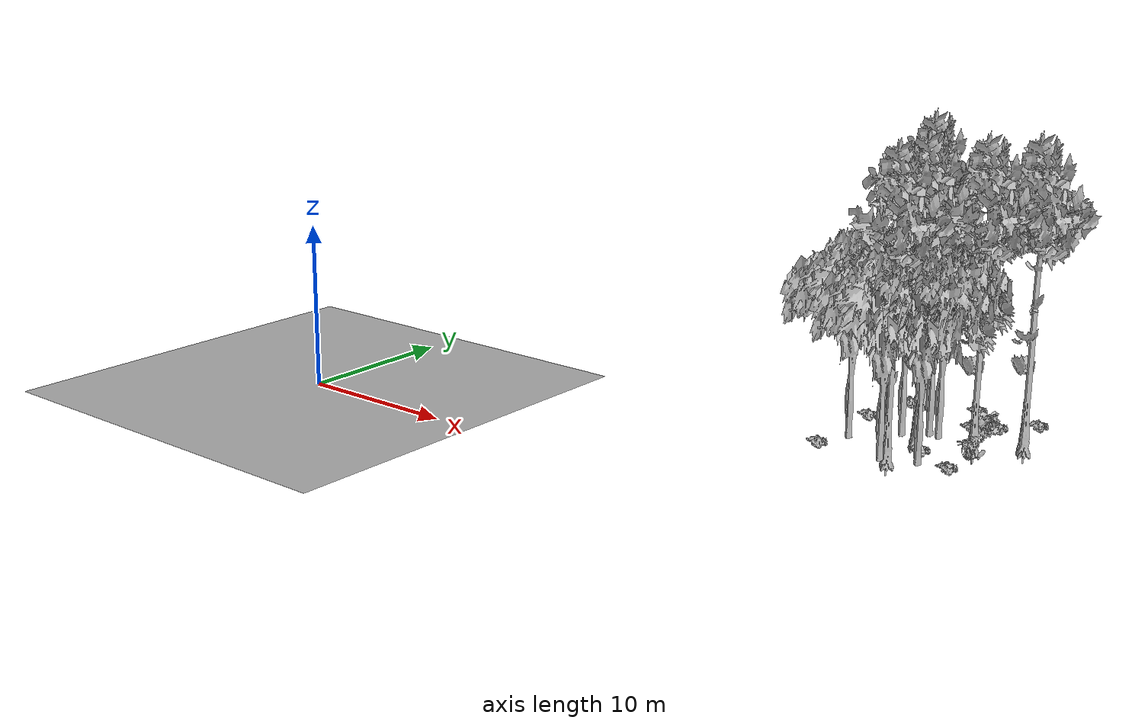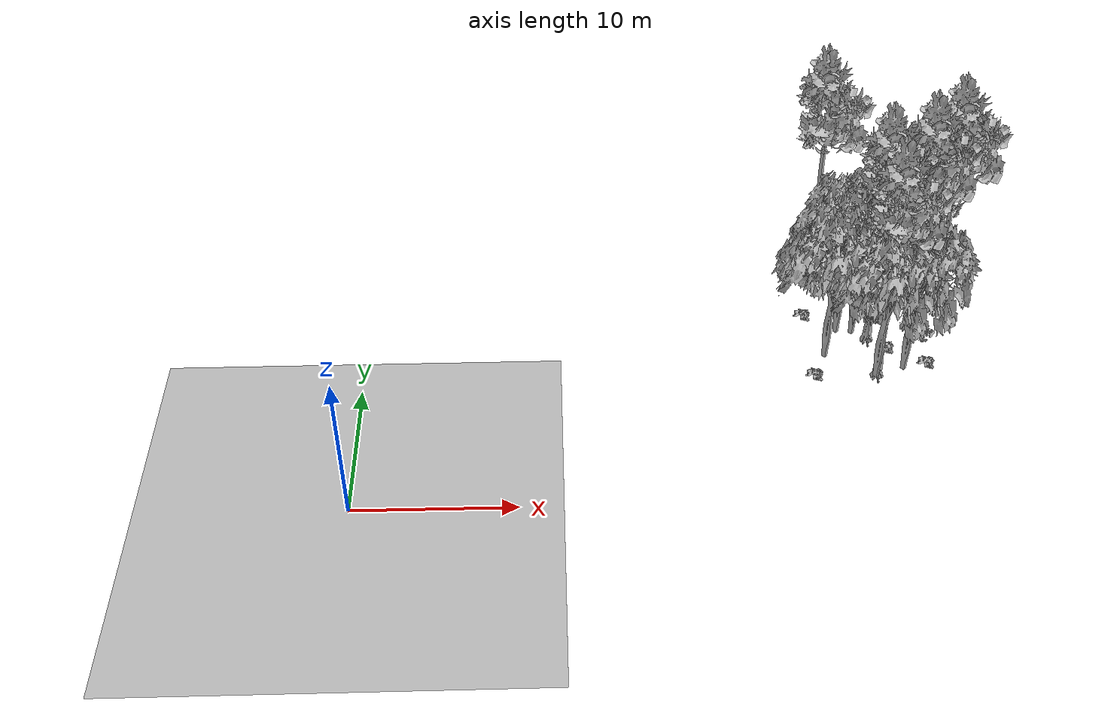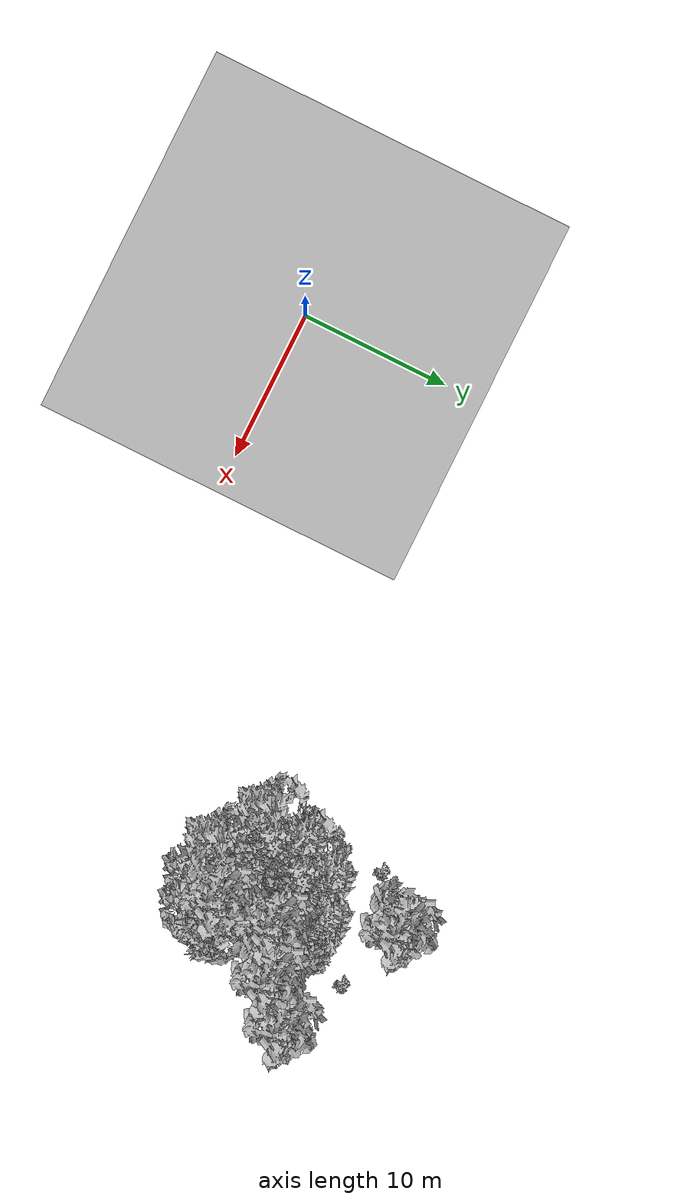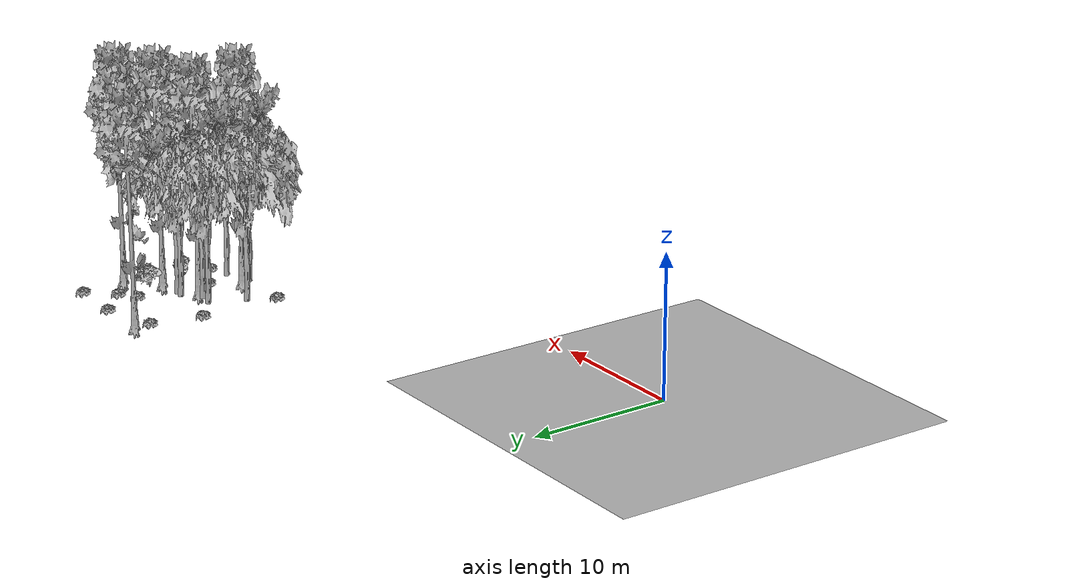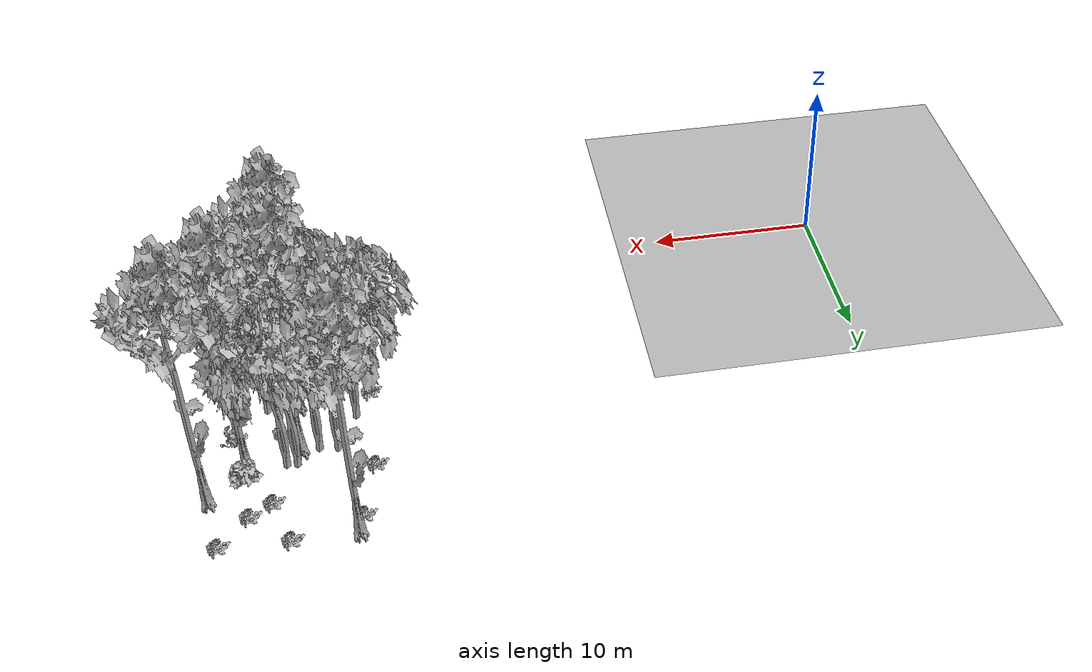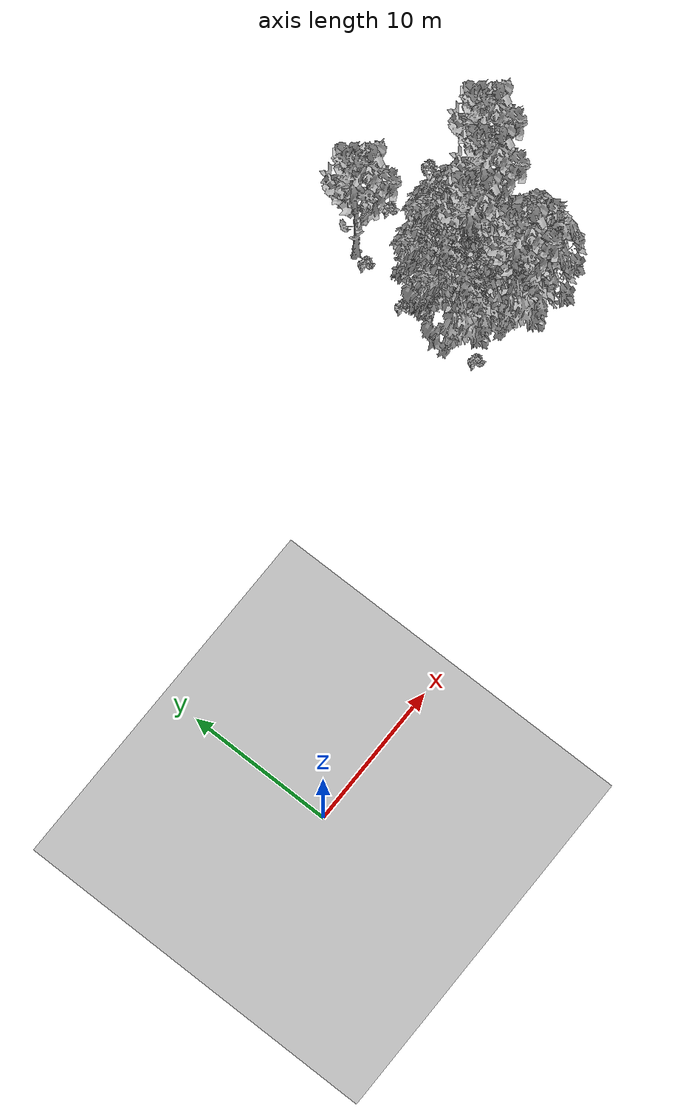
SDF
<sdf version="1.7">
 <world name="default">
  <model name="ground_plane">
   <static>1</static>
   <link name="link">
    <collision name="collision">
     <pose>-50 0 0 0 -0 0</pose>
     <geometry><plane><normal>0 0 1</normal><size>80 80</size></plane></geometry>
     <surface><contact><ode><min_depth>0.01</min_depth><max_vel>0</max_vel></ode></contact></surface>
    </collision>
    <visual name="grass">
     <cast_shadows>0</cast_shadows>
     <geometry>
      <mesh>
       <scale>0.46714285714285714 0.46714285714285714 0.1</scale>
       <uri>file://grass_plane/meshes/grass_plane.dae</uri>
      </mesh>
     </geometry>
    </visual>
   </link>
  </model>
  <model name="Tree 40">
   <static>1</static>
   <pose>33.59714849570504 15.854139629649211 0 1.57079 -0 0</pose>
   <link name="link">
    <collision name="collision">
     <geometry><mesh><scale>3.5 5 3.5</scale><uri>model://tree_2/meshes/tree_2.obj</uri></mesh></geometry>
    </collision>
    <visual name="visual">
     <geometry><mesh><scale>3.5 5 3.5</scale><uri>model://tree_2/meshes/tree_2.obj</uri></mesh></geometry>
    </visual>
   </link>
  </model>
  <model name="Tree 48">
   <static>1</static>
   <pose>33.02210089183515 11.138966554641854 0 1.57079 -0 0</pose>
   <link name="link">
    <collision name="collision">
     <geometry><mesh><scale>3.5 5 3.5</scale><uri>model://tree_9/meshes/tree_9.obj</uri></mesh></geometry>
    </collision>
    <visual name="visual">
     <geometry><mesh><scale>3.5 5 3.5</scale><uri>model://tree_9/meshes/tree_9.obj</uri></mesh></geometry>
    </visual>
   </link>
  </model>
  <model name="Tree 125">
   <static>1</static>
   <pose>29.71323302170586 12.664092961523174 0 1.57079 -0 0</pose>
   <link name="link">
    <collision name="collision">
     <geometry><mesh><scale>3.5 5 3.5</scale><uri>model://tree_2/meshes/tree_2.obj</uri></mesh></geometry>
    </collision>
    <visual name="visual">
     <geometry><mesh><scale>3.5 5 3.5</scale><uri>model://tree_2/meshes/tree_2.obj</uri></mesh></geometry>
    </visual>
   </link>
  </model>
  <model name="Tree 151">
   <static>1</static>
   <pose>37.92995364251033 17.670212638358713 0 1.57079 -0 0</pose>
   <link name="link">
    <collision name="collision">
     <geometry><mesh><scale>3.5 5 3.5</scale><uri>model://tree_9/meshes/tree_9.obj</uri></mesh></geometry>
    </collision>
    <visual name="visual">
     <geometry><mesh><scale>3.5 5 3.5</scale><uri>model://tree_9/meshes/tree_9.obj</uri></mesh></geometry>
    </visual>
   </link>
  </model>
  <model name="Tree 157">
   <static>1</static>
   <pose>32.72738799707044 10.670613152776781 0 1.57079 -0 0</pose>
   <link name="link">
    <collision name="collision">
     <geometry><mesh><scale>3.5 5 3.5</scale><uri>model://tree_2/meshes/tree_2.obj</uri></mesh></geometry>
    </collision>
    <visual name="visual">
     <geometry><mesh><scale>3.5 5 3.5</scale><uri>model://tree_2/meshes/tree_2.obj</uri></mesh></geometry>
    </visual>
   </link>
  </model>
  <model name="Tree 340">
   <static>1</static>
   <pose>30.808971382218033 15.057334024653215 0 1.57079 -0 0</pose>
   <link name="link">
    <collision name="collision">
     <geometry><mesh><scale>3.5 5 3.5</scale><uri>model://tree_2/meshes/tree_2.obj</uri></mesh></geometry>
    </collision>
    <visual name="visual">
     <geometry><mesh><scale>3.5 5 3.5</scale><uri>model://tree_2/meshes/tree_2.obj</uri></mesh></geometry>
    </visual>
   </link>
  </model>
  <model name="Tree 356">
   <static>1</static>
   <pose>35.81400885937765 15.806083373588365 0 1.57079 -0 0</pose>
   <link name="link">
    <collision name="collision">
     <geometry><mesh><scale>3.5 5 3.5</scale><uri>model://tree_9/meshes/tree_9.obj</uri></mesh></geometry>
    </collision>
    <visual name="visual">
     <geometry><mesh><scale>3.5 5 3.5</scale><uri>model://tree_9/meshes/tree_9.obj</uri></mesh></geometry>
    </visual>
   </link>
  </model>
  <model name="Tree 381">
   <static>1</static>
   <pose>32.93242745274375 14.639484213484252 0 1.57079 -0 0</pose>
   <link name="link">
    <collision name="collision">
     <geometry><mesh><scale>3.5 5 3.5</scale><uri>model://tree_9/meshes/tree_9.obj</uri></mesh></geometry>
    </collision>
    <visual name="visual">
     <geometry><mesh><scale>3.5 5 3.5</scale><uri>model://tree_9/meshes/tree_9.obj</uri></mesh></geometry>
    </visual>
   </link>
  </model>
  <model name="Tree 419">
   <static>1</static>
   <pose>31.81821696770018 14.895946998158891 0 1.57079 -0 0</pose>
   <link name="link">
    <collision name="collision">
     <geometry><mesh><scale>3.5 5 3.5</scale><uri>model://tree_2/meshes/tree_2.obj</uri></mesh></geometry>
    </collision>
    <visual name="visual">
     <geometry><mesh><scale>3.5 5 3.5</scale><uri>model://tree_2/meshes/tree_2.obj</uri></mesh></geometry>
    </visual>
   </link>
  </model>
  <model name="Tree 463">
   <static>1</static>
   <pose>30.009598472906376 21.248495499369525 0 1.57079 -0 0</pose>
   <link name="link">
    <collision name="collision">
     <geometry><mesh><scale>3.5 5 3.5</scale><uri>model://tree_9/meshes/tree_9.obj</uri></mesh></geometry>
    </collision>
    <visual name="visual">
     <geometry><mesh><scale>3.5 5 3.5</scale><uri>model://tree_9/meshes/tree_9.obj</uri></mesh></geometry>
    </visual>
   </link>
  </model>
  <model name="Tree 475">
   <static>1</static>
   <pose>33.02254355753472 15.903577309846675 0 1.57079 -0 0</pose>
   <link name="link">
    <collision name="collision">
     <geometry><mesh><scale>3.5 5 3.5</scale><uri>model://tree_2/meshes/tree_2.obj</uri></mesh></geometry>
    </collision>
    <visual name="visual">
     <geometry><mesh><scale>3.5 5 3.5</scale><uri>model://tree_2/meshes/tree_2.obj</uri></mesh></geometry>
    </visual>
   </link>
  </model>
  <model name="Tree 556">
   <static>1</static>
   <pose>34.63073637550134 11.34526681432331 0 1.57079 -0 0</pose>
   <link name="link">
    <collision name="collision">
     <geometry><mesh><scale>3.5 5 3.5</scale><uri>model://tree_2/meshes/tree_2.obj</uri></mesh></geometry>
    </collision>
    <visual name="visual">
     <geometry><mesh><scale>3.5 5 3.5</scale><uri>model://tree_2/meshes/tree_2.obj</uri></mesh></geometry>
    </visual>
   </link>
  </model>
  <model name="Bush 112">
   <static>1</static>
   <pose>33.90791933264617 13.229373575228024 0 1.57079 -0 0</pose>
   <link name="link">
    <collision name="collision">
     <geometry><mesh><scale>2 2 2</scale><uri>model://bush_2/meshes/bush_2.obj</uri></mesh></geometry>
     <surface><contact><collide_without_contact>false</collide_without_contact></contact></surface>
    </collision>
    <visual name="visual">
     <geometry><mesh><scale>2 2 2</scale><uri>model://bush_2/meshes/bush_2.obj</uri></mesh></geometry>
    </visual>
   </link>
  </model>
  <model name="Bush 209">
   <static>1</static>
   <pose>35.669322742282716 19.285885561821246 0 1.57079 -0 0</pose>
   <link name="link">
    <collision name="collision">
     <geometry><mesh><scale>2 2 2</scale><uri>model://bush_2/meshes/bush_2.obj</uri></mesh></geometry>
     <surface><contact><collide_without_contact>false</collide_without_contact></contact></surface>
    </collision>
    <visual name="visual">
     <geometry><mesh><scale>2 2 2</scale><uri>model://bush_2/meshes/bush_2.obj</uri></mesh></geometry>
    </visual>
   </link>
  </model>
  <model name="Bush 326">
   <static>1</static>
   <pose>35.84245608814615 16.815042381880673 0 1.57079 -0 0</pose>
   <link name="link">
    <collision name="collision">
     <geometry><mesh><scale>2 2 2</scale><uri>model://bush_1/meshes/bush_1.obj</uri></mesh></geometry>
     <surface><contact><collide_without_contact>false</collide_without_contact></contact></surface>
    </collision>
    <visual name="visual">
     <geometry><mesh><scale>2 2 2</scale><uri>model://bush_1/meshes/bush_1.obj</uri></mesh></geometry>
    </visual>
   </link>
  </model>
  <model name="Bush 341">
   <static>1</static>
   <pose>37.28710111518414 21.11507180381163 0 1.57079 -0 0</pose>
   <link name="link">
    <collision name="collision">
     <geometry><mesh><scale>2 2 2</scale><uri>model://bush_2/meshes/bush_2.obj</uri></mesh></geometry>
     <surface><contact><collide_without_contact>false</collide_without_contact></contact></surface>
    </collision>
    <visual name="visual">
     <geometry><mesh><scale>2 2 2</scale><uri>model://bush_2/meshes/bush_2.obj</uri></mesh></geometry>
    </visual>
   </link>
  </model>
  <model name="Bush 349">
   <static>1</static>
   <pose>33.49655302587517 21.294811869496122 0 1.57079 -0 0</pose>
   <link name="link">
    <collision name="collision">
     <geometry><mesh><scale>2 2 2</scale><uri>model://bush_2/meshes/bush_2.obj</uri></mesh></geometry>
     <surface><contact><collide_without_contact>false</collide_without_contact></contact></surface>
    </collision>
    <visual name="visual">
     <geometry><mesh><scale>2 2 2</scale><uri>model://bush_2/meshes/bush_2.obj</uri></mesh></geometry>
    </visual>
   </link>
  </model>
  <model name="Bush 398">
   <static>1</static>
   <pose>36.274890241420394 11.718472551938824 0 1.57079 -0 0</pose>
   <link name="link">
    <collision name="collision">
     <geometry><mesh><scale>2 2 2</scale><uri>model://bush_2/meshes/bush_2.obj</uri></mesh></geometry>
     <surface><contact><collide_without_contact>false</collide_without_contact></contact></surface>
    </collision>
    <visual name="visual">
     <geometry><mesh><scale>2 2 2</scale><uri>model://bush_2/meshes/bush_2.obj</uri></mesh></geometry>
    </visual>
   </link>
  </model>
  <model name="Bush 484">
   <static>1</static>
   <pose>34.43968557749477 18.485598406438314 0 1.57079 -0 0</pose>
   <link name="link">
    <collision name="collision">
     <geometry><mesh><scale>2 2 2</scale><uri>model://bush_2/meshes/bush_2.obj</uri></mesh></geometry>
     <surface><contact><collide_without_contact>false</collide_without_contact></contact></surface>
    </collision>
    <visual name="visual">
     <geometry><mesh><scale>2 2 2</scale><uri>model://bush_2/meshes/bush_2.obj</uri></mesh></geometry>
    </visual>
   </link>
  </model>
  <model name="Bush 559">
   <static>1</static>
   <pose>28.91536343243584 10.768613947897833 0 1.57079 -0 0</pose>
   <link name="link">
    <collision name="collision">
     <geometry><mesh><scale>2 2 2</scale><uri>model://bush_2/meshes/bush_2.obj</uri></mesh></geometry>
     <surface><contact><collide_without_contact>false</collide_without_contact></contact></surface>
    </collision>
    <visual name="visual">
     <geometry><mesh><scale>2 2 2</scale><uri>model://bush_2/meshes/bush_2.obj</uri></mesh></geometry>
    </visual>
   </link>
  </model>
  <model name="Bush 592">
   <static>1</static>
   <pose>28.87278925408475 16.602497139281297 0 1.57079 -0 0</pose>
   <link name="link">
    <collision name="collision">
     <geometry><mesh><scale>2 2 2</scale><uri>model://bush_2/meshes/bush_2.obj</uri></mesh></geometry>
     <surface><contact><collide_without_contact>false</collide_without_contact></contact></surface>
    </collision>
    <visual name="visual">
     <geometry><mesh><scale>2 2 2</scale><uri>model://bush_2/meshes/bush_2.obj</uri></mesh></geometry>
    </visual>
   </link>
  </model>
  <model name="Bush 613">
   <static>1</static>
   <pose>29.680284793554378 20.20883975274461 0 1.57079 -0 0</pose>
   <link name="link">
    <collision name="collision">
     <geometry><mesh><scale>2 2 2</scale><uri>model://bush_2/meshes/bush_2.obj</uri></mesh></geometry>
     <surface><contact><collide_without_contact>false</collide_without_contact></contact></surface>
    </collision>
    <visual name="visual">
     <geometry><mesh><scale>2 2 2</scale><uri>model://bush_2/meshes/bush_2.obj</uri></mesh></geometry>
    </visual>
   </link>
  </model>
  <model name="Bush 629">
   <static>1</static>
   <pose>36.48668681953097 13.821922487158801 0 1.57079 -0 0</pose>
   <link name="link">
    <collision name="collision">
     <geometry><mesh><scale>2 2 2</scale><uri>model://bush_4/meshes/bush_4.obj</uri></mesh></geometry>
     <surface><contact><collide_without_contact>false</collide_without_contact></contact></surface>
    </collision>
    <visual name="visual">
     <geometry><mesh><scale>2 2 2</scale><uri>model://bush_4/meshes/bush_4.obj</uri></mesh></geometry>
    </visual>
   </link>
  </model>
 </world>
</sdf>
